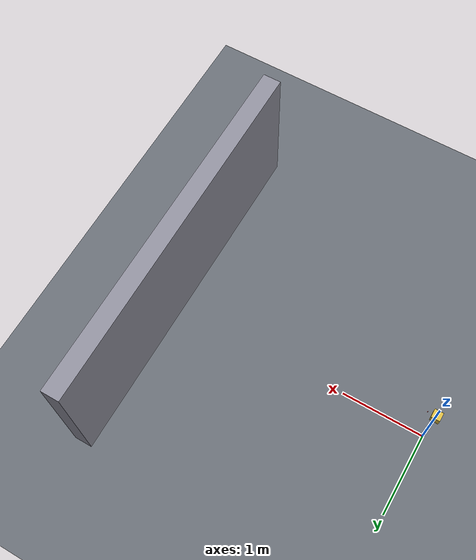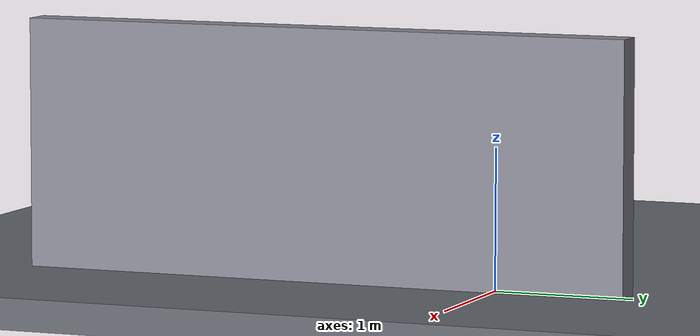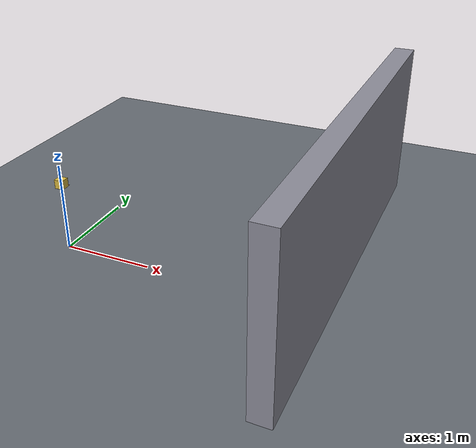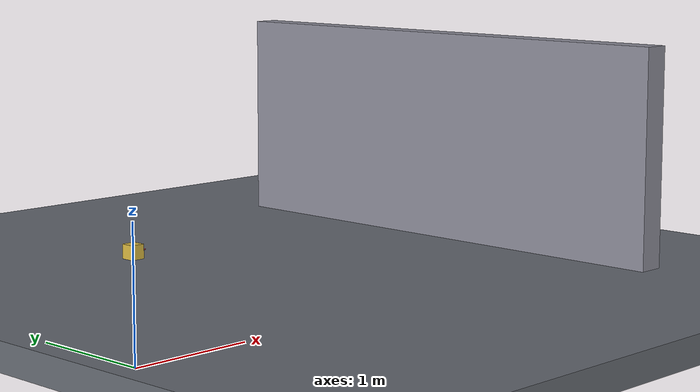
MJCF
<mujoco model="ladder0_rung5_mujoco">

  <!-- Only gravity and the timestep are set from the contract.  Everything
       else is MuJoCo's default, on purpose: this arm is the un-tuned
       reference for the solver OmniSim runs underneath. -->
  <option timestep="0.004" gravity="0 0 -9.81"/>

  <default>
    <!-- sliding / torsional / rolling.  condim defaults to 3, so only the
         first component is in force; the rest are declared for the record. -->
    <geom friction="1.0 0.005 0.0001"/>
  </default>

  <worldbody>
    <!-- Floor slab: full extents 20.0 x 20.0 x 0.2 m centred at z=0.4,
         so its top surface is at z=0.5.  Deliberately NOT at z=0. -->
    <geom name="floor" type="box" size="10.0 10.0 0.1" pos="0 0 0.4"
          rgba="0.4 0.42 0.45 1"/>

    <!-- wall: near face at x=3.0, so a ray from x_s reads 3.0-x_s. -->
    <geom name="wall" type="box" size="0.1 2.0 0.8"
          pos="3.1 0 1.3" rgba="0.55 0.55 0.6 1"/>

    <!-- Carrier: 0.1 m cube, mocap (kinematic).  The rangefinder site sits
         0.1 m ahead of the carrier ORIGIN, i.e. 0.05 m proud of its front
         face, and points along +X via zaxis. -->
    <body name="carrier" mocap="true" pos="0.0 0 0.8">
      <geom name="carrier_geom" type="box" size="0.05 0.05 0.05"
            rgba="0.85 0.72 0.25 1"/>
      <site name="range_site" pos="0.1 0 0" zaxis="1 0 0" size="0.005"
            rgba="0.9 0.2 0.2 1"/>
    </body>
  </worldbody>

  <sensor>
    <!-- Reads the distance from the SITE ORIGIN along the site's +Z to the
         first surface, in metres.  -1 means the ray hit nothing. -->
    <rangefinder name="range" site="range_site" cutoff="5.0"/>
  </sensor>

</mujoco>
